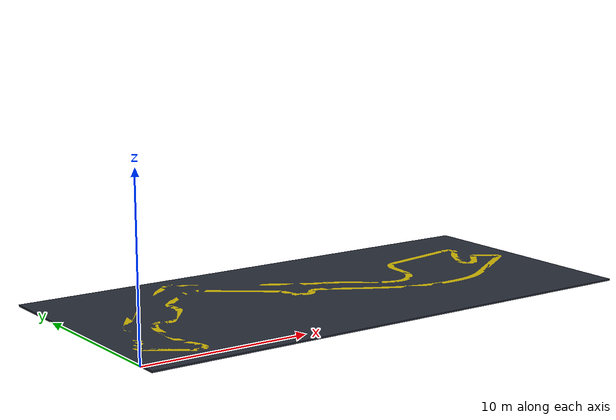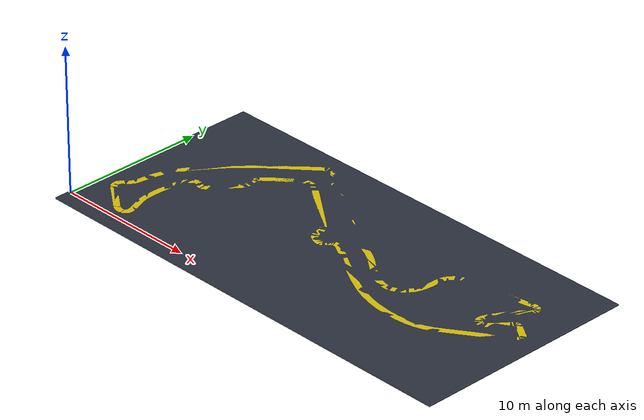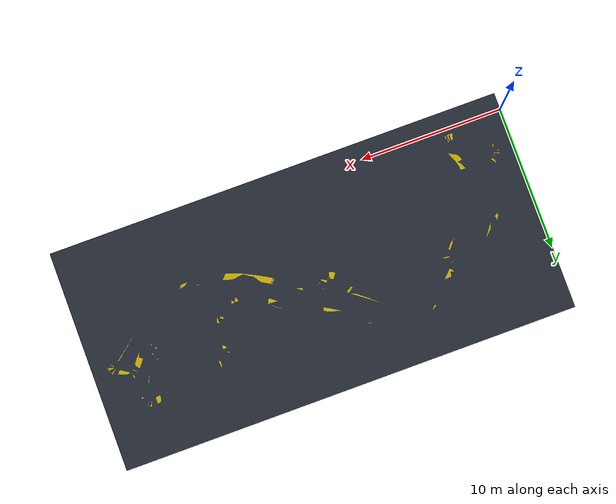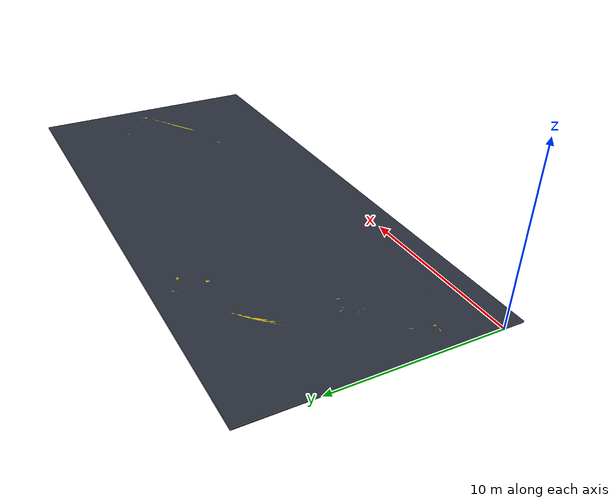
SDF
<?xml version='1.0'?>
<sdf version='1.7'>
  <model name='monaco'>
    <link name='link'>
      <self_collide>0</self_collide>
      <enable_wind>0</enable_wind>
      <kinematic>1</kinematic>
      <pose>0 0 0 0 -0 0</pose>
      <gravity>1</gravity>
      <inertial>
        <mass>1</mass>
        <pose>0 0 0 0 -0 0</pose>
        <inertia>
          <ixx>1</ixx>
          <ixy>0</ixy>
          <ixz>0</ixz>
          <iyy>1</iyy>
          <iyz>0</iyz>
          <izz>1</izz>
        </inertia>
      </inertial>
      <visual name='visual'>
        <geometry>
          <mesh>
            <scale>1 1 1</scale>
            <uri>model://monaco/meshes/monaco.dae</uri>
          </mesh>
        </geometry>
        <material>
          <shader type='pixel'>
            <normal_map>__default__</normal_map>
          </shader>
        </material>
        <pose>0 0 0 0 -0 0</pose>
        <transparency>0</transparency>
        <cast_shadows>1</cast_shadows>
      </visual>
      <collision name='collision'>
        <laser_retro>0</laser_retro>
        <max_contacts>10</max_contacts>
        <pose>0 0 0 0 -0 0</pose>
        <geometry>
          <mesh>
            <uri>model://monaco/meshes/monaco.stl</uri>
            <scale>1 1 1</scale>
          </mesh>
        </geometry>
        <surface>
          <friction>
            <ode>
              <mu>15</mu>
              <mu2>15</mu2>
              <fdir1>1 0 0</fdir1>
              <slip1>0.5</slip1>
              <slip2>0</slip2>
            </ode>
            <torsional>
              <coefficient>1</coefficient>
              <patch_radius>0</patch_radius>
              <surface_radius>0</surface_radius>
              <use_patch_radius>1</use_patch_radius>
              <ode>
                <slip>0</slip>
              </ode>
            </torsional>
          </friction>
          <bounce>
            <restitution_coefficient>0</restitution_coefficient>
            <threshold>1e+06</threshold>
          </bounce>
          <contact>
            <collide_without_contact>0</collide_without_contact>
            <collide_without_contact_bitmask>1</collide_without_contact_bitmask>
            <collide_bitmask>1</collide_bitmask>
            <ode>
              <soft_cfm>0</soft_cfm>
              <soft_erp>0.2</soft_erp>
              <kp>1e+06</kp>
              <kd>100</kd>
              <max_vel>1</max_vel>
              <min_depth>0.002</min_depth>
            </ode>
            <bullet>
              <split_impulse>1</split_impulse>
              <split_impulse_penetration_threshold>-0.01</split_impulse_penetration_threshold>
              <soft_cfm>0</soft_cfm>
              <soft_erp>0.2</soft_erp>
              <kp>1e+06</kp>
              <kd>100</kd>
            </bullet>
          </contact>
        </surface>
      </collision>
    </link>
    <static>1</static>
    <allow_auto_disable>1</allow_auto_disable>
  </model>
</sdf>
